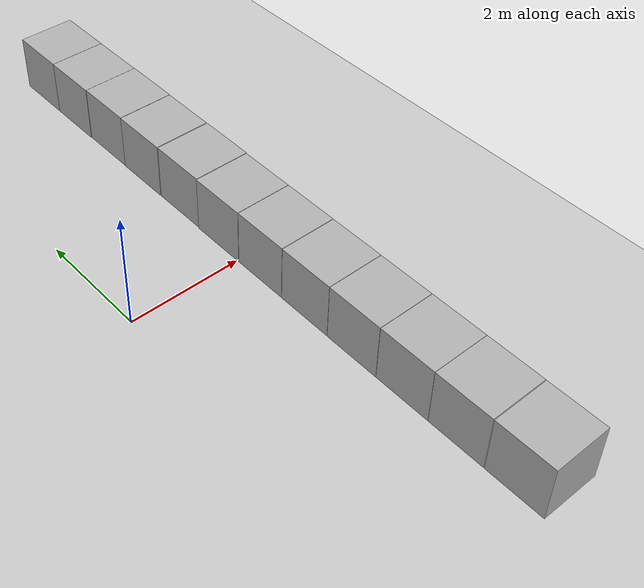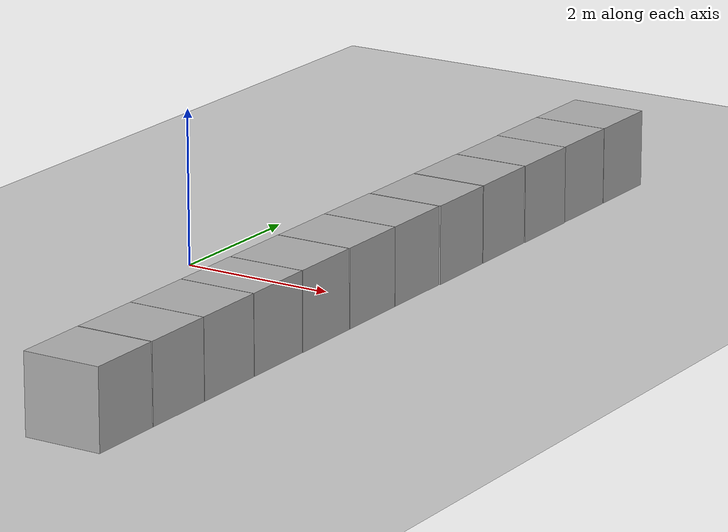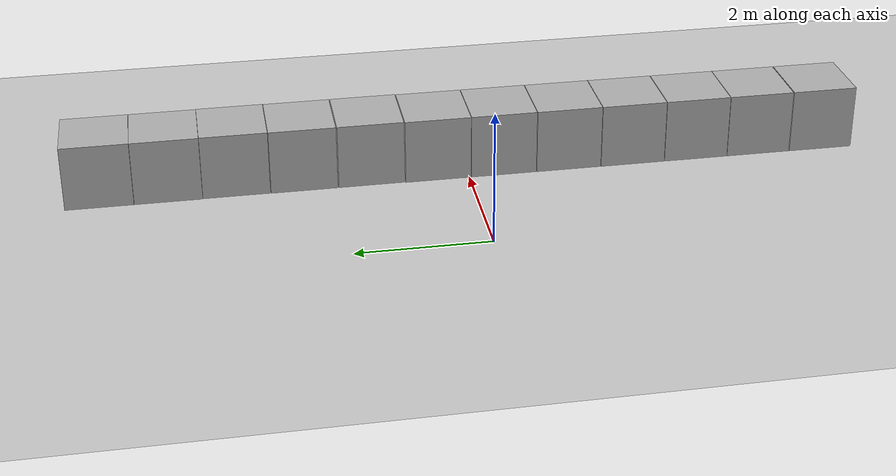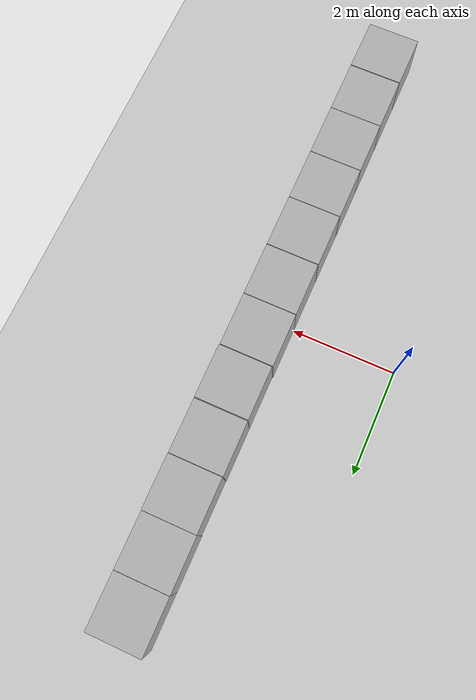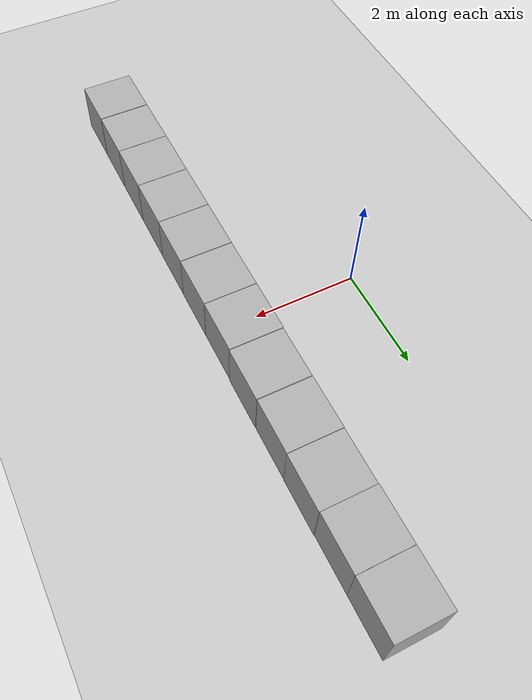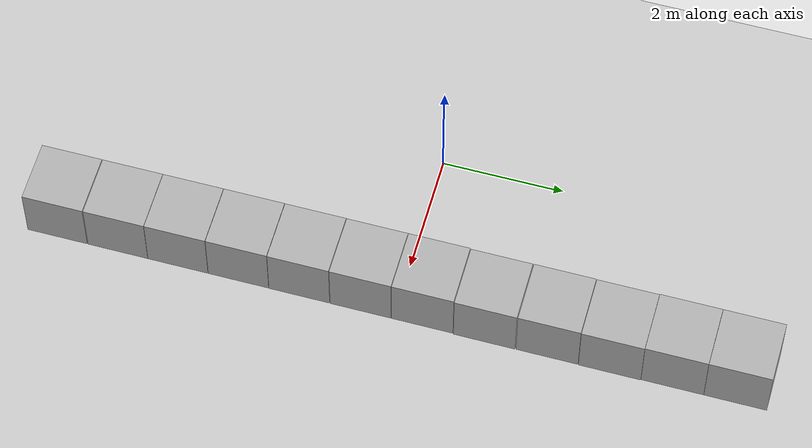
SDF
<sdf version='1.9'>
  <world name='empty'>
    <physics name='1ms' type='ode'>
      <max_step_size>0.001</max_step_size>
      <real_time_factor>1</real_time_factor>
      <solver>
        <type>quick</type>
        <iters>10</iters>
        <sor>1.3</sor>
      </solver>
      <real_time_update_rate>1000</real_time_update_rate>
    </physics>
    <plugin name='gz::sim::systems::Physics' filename='gz-sim-physics-system'/>
    <plugin name='gz::sim::systems::UserCommands' filename='gz-sim-user-commands-system'/>
    <plugin name='gz::sim::systems::SceneBroadcaster' filename='gz-sim-scene-broadcaster-system'/>
    <plugin name='gz::sim::systems::Sensors' filename='gz-sim-sensors-system'>
      <render_engine>ogre2</render_engine>
    </plugin>
    <plugin name='gz::sim::systems::Contact' filename='gz-sim-contact-system'/>
    <plugin name='trajectory_visual::TrajectoryVisualPlugin' filename='libtrajectory_visual_plugin.so'>
      <odom_topic>/odom</odom_topic>
      <min_dist>0.15</min_dist>
      <marker_radius>0.04</marker_radius>
      <color>1.0 0.2 0.0 1.0</color>
    </plugin>
    <gravity>0 0 -9.8</gravity>
    <magnetic_field>6e-06 2.3e-05 -4.2e-05</magnetic_field>
    <atmosphere type='adiabatic'/>
    <scene>
      <ambient>0.4 0.4 0.4 1</ambient>
      <background>0.7 0.7 0.7 1</background>
      <shadows>true</shadows>
    </scene>
    <model name='ground_plane'>
      <static>true</static>
      <link name='link'>
        <collision name='collision'>
          <geometry>
            <plane>
              <normal>0 0 1</normal>
              <size>100 100</size>
            </plane>
          </geometry>
          <surface>
            <friction>
              <ode>
                <mu>1</mu>
                <mu2>1</mu2>
              </ode>
            </friction>
            <bounce/>
            <contact/>
          </surface>
        </collision>
        <visual name='visual'>
          <geometry>
            <plane>
              <normal>0 0 1</normal>
              <size>100 100</size>
            </plane>
          </geometry>
          <material>
            <ambient>0.8 0.8 0.8 1</ambient>
            <diffuse>0.8 0.8 0.8 1</diffuse>
            <specular>0.8 0.8 0.8 1</specular>
          </material>
        </visual>
        <pose>0 0 0 0 -0 0</pose>
        <inertial>
          <pose>0 0 0 0 -0 0</pose>
          <mass>1</mass>
          <inertia>
            <ixx>1</ixx>
            <ixy>0</ixy>
            <ixz>0</ixz>
            <iyy>1</iyy>
            <iyz>0</iyz>
            <izz>1</izz>
          </inertia>
        </inertial>
        <enable_wind>false</enable_wind>
      </link>
      <pose>0 0 0 0 -0 0</pose>
      <self_collide>false</self_collide>
    </model>
    <model name='box'>
      <pose>2.50848 5.51192 0.5 0 0 -0</pose>
      <link name='box_link'>
        <inertial>
          <inertia>
            <ixx>0.16666</ixx>
            <ixy>0</ixy>
            <ixz>0</ixz>
            <iyy>0.16666</iyy>
            <iyz>0</iyz>
            <izz>0.16666</izz>
          </inertia>
          <mass>1</mass>
          <pose>0 0 0 0 -0 0</pose>
        </inertial>
        <collision name='box_collision'>
          <geometry>
            <box>
              <size>1 1 1</size>
            </box>
          </geometry>
          <surface>
            <friction>
              <ode/>
            </friction>
            <bounce/>
            <contact/>
          </surface>
        </collision>
        <visual name='box_visual'>
          <geometry>
            <box>
              <size>1 1 1</size>
            </box>
          </geometry>
          <material>
            <ambient>0.3 0.3 0.3 1</ambient>
            <diffuse>0.7 0.7 0.7 1</diffuse>
            <specular>1 1 1 1</specular>
          </material>
        </visual>
        <pose>0 0 0 0 -0 0</pose>
        <enable_wind>false</enable_wind>
      </link>
      <static>false</static>
      <self_collide>false</self_collide>
    </model>
    <model name='box_1'>
      <pose>2.50787 4.50793 0.5 0 0 -0</pose>
      <link name='box_link'>
        <inertial>
          <inertia>
            <ixx>0.16666</ixx>
            <ixy>0</ixy>
            <ixz>0</ixz>
            <iyy>0.16666</iyy>
            <iyz>0</iyz>
            <izz>0.16666</izz>
          </inertia>
          <mass>1</mass>
        </inertial>
        <collision name='box_collision'>
          <geometry>
            <box>
              <size>1 1 1</size>
            </box>
          </geometry>
          <surface>
            <friction>
              <ode/>
            </friction>
            <bounce/>
            <contact/>
          </surface>
        </collision>
        <visual name='box_visual'>
          <geometry>
            <box>
              <size>1 1 1</size>
            </box>
          </geometry>
          <material>
            <ambient>0.3 0.3 0.3 1</ambient>
            <diffuse>0.7 0.7 0.7 1</diffuse>
            <specular>1 1 1 1</specular>
          </material>
        </visual>
      </link>
      <static>false</static>
      <self_collide>false</self_collide>
    </model>
    <model name='box_2'>
      <pose>2.5158 3.50476 0.5 0 0 -0</pose>
      <link name='box_link'>
        <inertial>
          <inertia>
            <ixx>0.16666</ixx>
            <ixy>0</ixy>
            <ixz>0</ixz>
            <iyy>0.16666</iyy>
            <iyz>0</iyz>
            <izz>0.16666</izz>
          </inertia>
          <mass>1</mass>
        </inertial>
        <collision name='box_collision'>
          <geometry>
            <box>
              <size>1 1 1</size>
            </box>
          </geometry>
          <surface>
            <friction>
              <ode/>
            </friction>
            <bounce/>
            <contact/>
          </surface>
        </collision>
        <visual name='box_visual'>
          <geometry>
            <box>
              <size>1 1 1</size>
            </box>
          </geometry>
          <material>
            <ambient>0.3 0.3 0.3 1</ambient>
            <diffuse>0.7 0.7 0.7 1</diffuse>
            <specular>1 1 1 1</specular>
          </material>
        </visual>
      </link>
      <static>false</static>
      <self_collide>false</self_collide>
    </model>
    <model name='box_3'>
      <pose>2.51014 2.49677 0.5 0 0 -0</pose>
      <link name='box_link'>
        <inertial>
          <inertia>
            <ixx>0.16666</ixx>
            <ixy>0</ixy>
            <ixz>0</ixz>
            <iyy>0.16666</iyy>
            <iyz>0</iyz>
            <izz>0.16666</izz>
          </inertia>
          <mass>1</mass>
        </inertial>
        <collision name='box_collision'>
          <geometry>
            <box>
              <size>1 1 1</size>
            </box>
          </geometry>
          <surface>
            <friction>
              <ode/>
            </friction>
            <bounce/>
            <contact/>
          </surface>
        </collision>
        <visual name='box_visual'>
          <geometry>
            <box>
              <size>1 1 1</size>
            </box>
          </geometry>
          <material>
            <ambient>0.3 0.3 0.3 1</ambient>
            <diffuse>0.7 0.7 0.7 1</diffuse>
            <specular>1 1 1 1</specular>
          </material>
        </visual>
      </link>
      <static>false</static>
      <self_collide>false</self_collide>
    </model>
    <model name='box_4'>
      <pose>2.51229 1.48119 0.5 0 0 -0</pose>
      <link name='box_link'>
        <inertial>
          <inertia>
            <ixx>0.16666</ixx>
            <ixy>0</ixy>
            <ixz>0</ixz>
            <iyy>0.16666</iyy>
            <iyz>0</iyz>
            <izz>0.16666</izz>
          </inertia>
          <mass>1</mass>
        </inertial>
        <collision name='box_collision'>
          <geometry>
            <box>
              <size>1 1 1</size>
            </box>
          </geometry>
          <surface>
            <friction>
              <ode/>
            </friction>
            <bounce/>
            <contact/>
          </surface>
        </collision>
        <visual name='box_visual'>
          <geometry>
            <box>
              <size>1 1 1</size>
            </box>
          </geometry>
          <material>
            <ambient>0.3 0.3 0.3 1</ambient>
            <diffuse>0.7 0.7 0.7 1</diffuse>
            <specular>1 1 1 1</specular>
          </material>
        </visual>
      </link>
      <static>false</static>
      <self_collide>false</self_collide>
    </model>
    <model name='box_5'>
      <pose>2.49968 0.46871 0.5 0 0 -0</pose>
      <link name='box_link'>
        <inertial>
          <inertia>
            <ixx>0.16666</ixx>
            <ixy>0</ixy>
            <ixz>0</ixz>
            <iyy>0.16666</iyy>
            <iyz>0</iyz>
            <izz>0.16666</izz>
          </inertia>
          <mass>1</mass>
        </inertial>
        <collision name='box_collision'>
          <geometry>
            <box>
              <size>1 1 1</size>
            </box>
          </geometry>
          <surface>
            <friction>
              <ode/>
            </friction>
            <bounce/>
            <contact/>
          </surface>
        </collision>
        <visual name='box_visual'>
          <geometry>
            <box>
              <size>1 1 1</size>
            </box>
          </geometry>
          <material>
            <ambient>0.3 0.3 0.3 1</ambient>
            <diffuse>0.7 0.7 0.7 1</diffuse>
            <specular>1 1 1 1</specular>
          </material>
        </visual>
      </link>
      <static>false</static>
      <self_collide>false</self_collide>
    </model>
    <model name='box_6'>
      <pose>2.49987 -0.539162 0.5 -0 0 -0</pose>
      <link name='box_link'>
        <inertial>
          <inertia>
            <ixx>0.16666</ixx>
            <ixy>0</ixy>
            <ixz>0</ixz>
            <iyy>0.16666</iyy>
            <iyz>0</iyz>
            <izz>0.16666</izz>
          </inertia>
          <mass>1</mass>
        </inertial>
        <collision name='box_collision'>
          <geometry>
            <box>
              <size>1 1 1</size>
            </box>
          </geometry>
          <surface>
            <friction>
              <ode/>
            </friction>
            <bounce/>
            <contact/>
          </surface>
        </collision>
        <visual name='box_visual'>
          <geometry>
            <box>
              <size>1 1 1</size>
            </box>
          </geometry>
          <material>
            <ambient>0.3 0.3 0.3 1</ambient>
            <diffuse>0.7 0.7 0.7 1</diffuse>
            <specular>1 1 1 1</specular>
          </material>
        </visual>
      </link>
      <static>false</static>
      <self_collide>false</self_collide>
    </model>
    <model name='box_7'>
      <pose>2.49719 -1.54899 0.5 0 0 -0</pose>
      <link name='box_link'>
        <inertial>
          <inertia>
            <ixx>0.16666</ixx>
            <ixy>0</ixy>
            <ixz>0</ixz>
            <iyy>0.16666</iyy>
            <iyz>0</iyz>
            <izz>0.16666</izz>
          </inertia>
          <mass>1</mass>
        </inertial>
        <collision name='box_collision'>
          <geometry>
            <box>
              <size>1 1 1</size>
            </box>
          </geometry>
          <surface>
            <friction>
              <ode/>
            </friction>
            <bounce/>
            <contact/>
          </surface>
        </collision>
        <visual name='box_visual'>
          <geometry>
            <box>
              <size>1 1 1</size>
            </box>
          </geometry>
          <material>
            <ambient>0.3 0.3 0.3 1</ambient>
            <diffuse>0.7 0.7 0.7 1</diffuse>
            <specular>1 1 1 1</specular>
          </material>
        </visual>
      </link>
      <static>false</static>
      <self_collide>false</self_collide>
    </model>
    <model name='box_8'>
      <pose>2.49493 -2.55596 0.5 0 0 -0</pose>
      <link name='box_link'>
        <inertial>
          <inertia>
            <ixx>0.16666</ixx>
            <ixy>0</ixy>
            <ixz>0</ixz>
            <iyy>0.16666</iyy>
            <iyz>0</iyz>
            <izz>0.16666</izz>
          </inertia>
          <mass>1</mass>
        </inertial>
        <collision name='box_collision'>
          <geometry>
            <box>
              <size>1 1 1</size>
            </box>
          </geometry>
          <surface>
            <friction>
              <ode/>
            </friction>
            <bounce/>
            <contact/>
          </surface>
        </collision>
        <visual name='box_visual'>
          <geometry>
            <box>
              <size>1 1 1</size>
            </box>
          </geometry>
          <material>
            <ambient>0.3 0.3 0.3 1</ambient>
            <diffuse>0.7 0.7 0.7 1</diffuse>
            <specular>1 1 1 1</specular>
          </material>
        </visual>
      </link>
      <static>false</static>
      <self_collide>false</self_collide>
    </model>
    <model name='box_9'>
      <pose>2.49489 -3.56258 0.5 0 -0 0</pose>
      <link name='box_link'>
        <inertial>
          <inertia>
            <ixx>0.16666</ixx>
            <ixy>0</ixy>
            <ixz>0</ixz>
            <iyy>0.16666</iyy>
            <iyz>0</iyz>
            <izz>0.16666</izz>
          </inertia>
          <mass>1</mass>
        </inertial>
        <collision name='box_collision'>
          <geometry>
            <box>
              <size>1 1 1</size>
            </box>
          </geometry>
          <surface>
            <friction>
              <ode/>
            </friction>
            <bounce/>
            <contact/>
          </surface>
        </collision>
        <visual name='box_visual'>
          <geometry>
            <box>
              <size>1 1 1</size>
            </box>
          </geometry>
          <material>
            <ambient>0.3 0.3 0.3 1</ambient>
            <diffuse>0.7 0.7 0.7 1</diffuse>
            <specular>1 1 1 1</specular>
          </material>
        </visual>
      </link>
      <static>false</static>
      <self_collide>false</self_collide>
    </model>
    <model name='box_10'>
      <pose>2.49453 -4.56769 0.5 0 0 -0</pose>
      <link name='box_link'>
        <inertial>
          <inertia>
            <ixx>0.16666</ixx>
            <ixy>0</ixy>
            <ixz>0</ixz>
            <iyy>0.16666</iyy>
            <iyz>0</iyz>
            <izz>0.16666</izz>
          </inertia>
          <mass>1</mass>
        </inertial>
        <collision name='box_collision'>
          <geometry>
            <box>
              <size>1 1 1</size>
            </box>
          </geometry>
          <surface>
            <friction>
              <ode/>
            </friction>
            <bounce/>
            <contact/>
          </surface>
        </collision>
        <visual name='box_visual'>
          <geometry>
            <box>
              <size>1 1 1</size>
            </box>
          </geometry>
          <material>
            <ambient>0.3 0.3 0.3 1</ambient>
            <diffuse>0.7 0.7 0.7 1</diffuse>
            <specular>1 1 1 1</specular>
          </material>
        </visual>
      </link>
      <static>false</static>
      <self_collide>false</self_collide>
    </model>
    <model name='box_11'>
      <pose>2.49333 -5.58071 0.5 0 0 -0</pose>
      <link name='box_link'>
        <inertial>
          <inertia>
            <ixx>0.16666</ixx>
            <ixy>0</ixy>
            <ixz>0</ixz>
            <iyy>0.16666</iyy>
            <iyz>0</iyz>
            <izz>0.16666</izz>
          </inertia>
          <mass>1</mass>
        </inertial>
        <collision name='box_collision'>
          <geometry>
            <box>
              <size>1 1 1</size>
            </box>
          </geometry>
          <surface>
            <friction>
              <ode/>
            </friction>
            <bounce/>
            <contact/>
          </surface>
        </collision>
        <visual name='box_visual'>
          <geometry>
            <box>
              <size>1 1 1</size>
            </box>
          </geometry>
          <material>
            <ambient>0.3 0.3 0.3 1</ambient>
            <diffuse>0.7 0.7 0.7 1</diffuse>
            <specular>1 1 1 1</specular>
          </material>
        </visual>
      </link>
      <static>false</static>
      <self_collide>false</self_collide>
    </model>
    <light name='sun' type='directional'>
      <pose>0 0 10 0 -0 0</pose>
      <cast_shadows>true</cast_shadows>
      <intensity>1</intensity>
      <direction>-0.5 0.1 -0.9</direction>
      <diffuse>0.8 0.8 0.8 1</diffuse>
      <specular>0.2 0.2 0.2 1</specular>
      <attenuation>
        <range>1000</range>
        <linear>0.01</linear>
        <constant>0.90000000000000002</constant>
        <quadratic>0.001</quadratic>
      </attenuation>
      <spot>
        <inner_angle>0</inner_angle>
        <outer_angle>0</outer_angle>
        <falloff>0</falloff>
      </spot>
    </light>
  </world>
</sdf>
